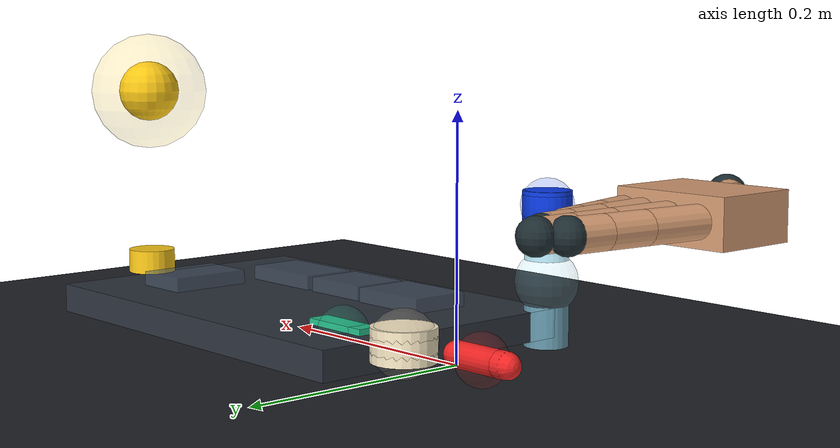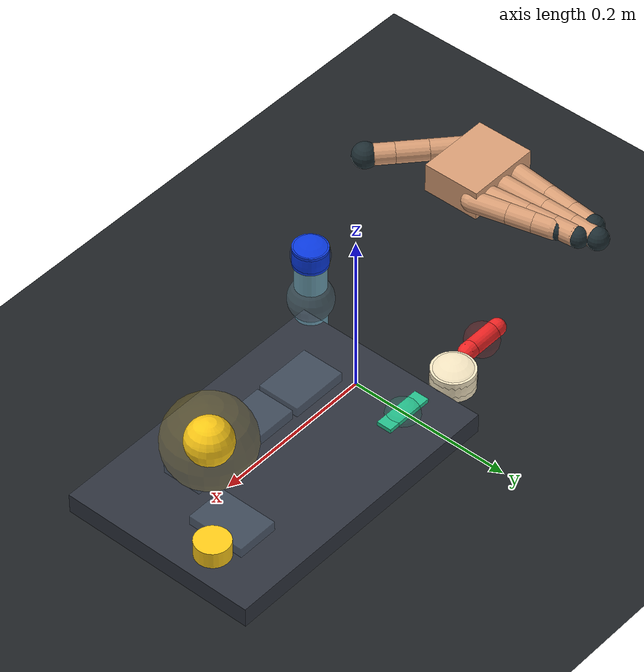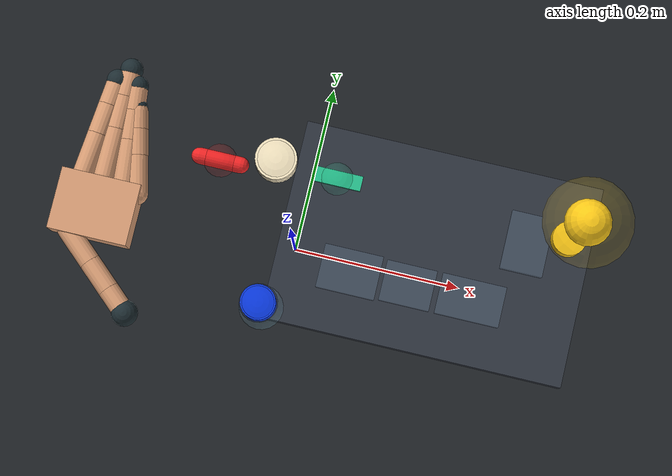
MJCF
<mujoco model="tactile_medkit_manipulation_benchmark">
  <compiler angle="degree" autolimits="true"/>
  <option timestep="0.01" gravity="0 0 -9.81" integrator="RK4"/>

  <visual>
    <global offwidth="1280" offheight="720"/>
    <quality shadowsize="2048"/>
    <headlight diffuse="0.8 0.8 0.8" ambient="0.25 0.25 0.25" specular="0.2 0.2 0.2"/>
  </visual>

  <asset>
    <texture name="grid" type="2d" builtin="checker" width="512" height="512" rgb1="0.08 0.09 0.1" rgb2="0.16 0.18 0.2"/>
    <material name="floor_mat" texture="grid" texrepeat="4 4" reflectance="0.08"/>
    <material name="hand_mat" rgba="0.85 0.62 0.46 1"/>
    <material name="pad_mat" rgba="0.12 0.18 0.2 1"/>
    <material name="vial_mat" rgba="0.6 0.9 1.0 0.65"/>
    <material name="cap_mat" rgba="0.05 0.24 0.9 1"/>
    <material name="capsule_mat" rgba="0.95 0.15 0.15 1"/>
    <material name="bandage_mat" rgba="0.98 0.92 0.78 1"/>
    <material name="tool_mat" rgba="0.15 0.75 0.55 1"/>
    <material name="tray_mat" rgba="0.18 0.2 0.24 1"/>
    <material name="slot_mat" rgba="0.35 0.42 0.5 0.5"/>
    <material name="button_mat" rgba="1.0 0.8 0.1 1"/>
  </asset>

  <default>
    <joint damping="0.7" stiffness="0.05"/>
    <geom condim="4" contype="0" conaffinity="0" friction="1.1 0.08 0.01" solref="0.01 1" solimp="0.9 0.95 0.001"/>
    <default class="finger">
      <joint limited="true" range="-18 74" armature="0.01"/>
      <geom type="capsule" size="0.012" material="hand_mat"/>
    </default>
  </default>

  <worldbody>
    <light name="key" pos="0.2 -0.8 1.2" dir="-0.2 0.6 -1"/>
    <camera name="demo" pos="0.62 -0.82 0.48" xyaxes="0.82 0.57 0 -0.26 0.37 0.89"/>
    <geom name="floor" type="plane" size="1.1 1.1 0.02" material="floor_mat"/>

    <body name="kit_tray" pos="0.16 0.03 0.025">
      <geom name="tray_base" type="box" size="0.18 0.12 0.012" material="tray_mat"/>
      <geom name="slot_a" type="box" pos="-0.09 -0.045 0.018" size="0.035 0.026 0.006" material="slot_mat"/>
      <geom name="slot_b" type="box" pos="-0.02 -0.045 0.018" size="0.030 0.024 0.006" material="slot_mat"/>
      <geom name="slot_c" type="box" pos="0.055 -0.045 0.018" size="0.038 0.024 0.006" material="slot_mat"/>
      <geom name="slot_d" type="box" pos="0.105 0.035 0.018" size="0.025 0.035 0.006" material="slot_mat"/>
    </body>

    <body name="hand_root" pos="-0.22 -0.02 0.14">
      <freejoint name="hand_free"/>
      <geom name="palm" type="box" size="0.045 0.035 0.018" material="hand_mat"/>
      <body name="thumb_base" pos="-0.025 -0.03 0.0" euler="0 0 -42">
        <joint name="thumb_mcp" class="finger" axis="0 0 1"/>
        <geom name="thumb_proximal" class="finger" fromto="0 0 0 0.045 0 0"/>
        <body name="thumb_mid" pos="0.045 0 0">
          <joint name="thumb_pip" class="finger" axis="0 0 1"/>
          <geom name="thumb_middle" class="finger" fromto="0 0 0 0.037 0 0"/>
          <body name="thumb_tip" pos="0.037 0 0">
            <joint name="thumb_dip" class="finger" axis="0 0 1"/>
            <geom name="thumb_distal" class="finger" fromto="0 0 0 0.027 0 0"/>
            <geom name="thumb_pad" type="sphere" pos="0.032 0 0" size="0.015" material="pad_mat" contype="1" conaffinity="2"/>
            <site name="thumb_tip_site" pos="0.034 0 0" size="0.006"/>
          </body>
        </body>
      </body>
      <body name="index_base" pos="-0.024 0.032 0.0" euler="0 0 84">
        <joint name="index_mcp" class="finger" axis="0 0 1"/>
        <geom name="index_proximal" class="finger" fromto="0 0 0 0.050 0 0"/>
        <body pos="0.050 0 0">
          <joint name="index_pip" class="finger" axis="0 0 1"/>
          <geom name="index_middle" class="finger" fromto="0 0 0 0.035 0 0"/>
          <body pos="0.035 0 0">
            <joint name="index_dip" class="finger" axis="0 0 1"/>
            <geom name="index_distal" class="finger" fromto="0 0 0 0.025 0 0"/>
            <geom name="index_pad" type="sphere" pos="0.030 0 0" size="0.013" material="pad_mat" contype="1" conaffinity="2"/>
            <site name="index_tip_site" pos="0.032 0 0" size="0.006"/>
          </body>
        </body>
      </body>
      <body name="middle_base" pos="0.0 0.037 0.0" euler="0 0 90">
        <joint name="middle_mcp" class="finger" axis="0 0 1"/>
        <geom name="middle_proximal" class="finger" fromto="0 0 0 0.055 0 0"/>
        <body pos="0.055 0 0">
          <joint name="middle_pip" class="finger" axis="0 0 1"/>
          <geom name="middle_middle" class="finger" fromto="0 0 0 0.038 0 0"/>
          <body pos="0.038 0 0">
            <joint name="middle_dip" class="finger" axis="0 0 1"/>
            <geom name="middle_distal" class="finger" fromto="0 0 0 0.027 0 0"/>
            <geom name="middle_pad" type="sphere" pos="0.032 0 0" size="0.013" material="pad_mat" contype="1" conaffinity="2"/>
            <site name="middle_tip_site" pos="0.034 0 0" size="0.006"/>
          </body>
        </body>
      </body>
      <body name="ring_base" pos="0.023 0.034 0.0" euler="0 0 96">
        <joint name="ring_mcp" class="finger" axis="0 0 1"/>
        <geom name="ring_proximal" class="finger" fromto="0 0 0 0.049 0 0"/>
        <body pos="0.049 0 0">
          <joint name="ring_pip" class="finger" axis="0 0 1"/>
          <geom name="ring_middle" class="finger" fromto="0 0 0 0.034 0 0"/>
          <body pos="0.034 0 0">
            <joint name="ring_dip" class="finger" axis="0 0 1"/>
            <geom name="ring_distal" class="finger" fromto="0 0 0 0.024 0 0"/>
            <geom name="ring_pad" type="sphere" pos="0.029 0 0" size="0.012" material="pad_mat" contype="1" conaffinity="2"/>
            <site name="ring_tip_site" pos="0.031 0 0" size="0.006"/>
          </body>
        </body>
      </body>
      <body name="little_base" pos="0.041 0.026 0.0" euler="0 0 104">
        <joint name="little_mcp" class="finger" axis="0 0 1"/>
        <geom name="little_proximal" class="finger" fromto="0 0 0 0.043 0 0"/>
        <body pos="0.043 0 0">
          <joint name="little_pip" class="finger" axis="0 0 1"/>
          <geom name="little_middle" class="finger" fromto="0 0 0 0.030 0 0"/>
          <body pos="0.030 0 0">
            <joint name="little_dip" class="finger" axis="0 0 1"/>
            <geom name="little_distal" class="finger" fromto="0 0 0 0.021 0 0"/>
            <geom name="little_pad" type="sphere" pos="0.026 0 0" size="0.011" material="pad_mat" contype="1" conaffinity="2"/>
            <site name="little_tip_site" pos="0.028 0 0" size="0.006"/>
          </body>
        </body>
      </body>
    </body>

    <body name="vial" pos="-0.02 -0.08 0.06">
      <freejoint name="vial_free"/>
      <geom name="vial_glass" type="cylinder" size="0.018 0.052" material="vial_mat" contype="2" conaffinity="1"/>
      <geom name="vial_contact_shell" type="sphere" size="0.026" material="vial_mat" contype="2" conaffinity="1" rgba="0.6 0.9 1.0 0.12"/>
    </body>
    <body name="cap" pos="-0.02 -0.08 0.122">
      <freejoint name="cap_free"/>
      <geom name="cap_blue" type="cylinder" size="0.020 0.012" material="cap_mat" contype="2" conaffinity="1"/>
      <geom name="cap_contact_shell" type="sphere" size="0.022" material="cap_mat" contype="2" conaffinity="1" rgba="0.05 0.24 0.9 0.12"/>
    </body>
    <body name="capsule" pos="-0.11 0.08 0.035">
      <freejoint name="capsule_free"/>
      <geom name="capsule_geom" type="capsule" fromto="-0.025 0 0 0.025 0 0" size="0.010" material="capsule_mat" contype="2" conaffinity="1"/>
      <geom name="capsule_contact_shell" type="sphere" size="0.020" material="capsule_mat" contype="2" conaffinity="1" rgba="0.95 0.15 0.15 0.12"/>
    </body>
    <body name="bandage" pos="-0.045 0.095 0.038">
      <freejoint name="bandage_free"/>
      <geom name="bandage_roll" type="cylinder" size="0.025 0.013" material="bandage_mat" contype="2" conaffinity="1"/>
      <geom name="bandage_contact_shell" type="sphere" size="0.026" material="bandage_mat" contype="2" conaffinity="1" rgba="0.98 0.92 0.78 0.12"/>
    </body>
    <body name="tool_token" pos="0.03 0.09 0.035">
      <freejoint name="tool_free"/>
      <geom name="tool_body" type="box" size="0.030 0.009 0.007" material="tool_mat" contype="2" conaffinity="1"/>
      <geom name="tool_contact_shell" type="sphere" size="0.020" material="tool_mat" contype="2" conaffinity="1" rgba="0.15 0.75 0.55 0.12"/>
    </body>
    <body name="button" pos="0.31 0.08 0.055">
      <joint name="button_slide" type="slide" axis="0 0 1" range="-0.01 0.008" limited="true" damping="0.2"/>
      <geom name="button_stem" type="cylinder" size="0.020 0.010" material="button_mat" contype="2" conaffinity="1"/>
      <geom name="button_head" pos="0 0 0.150" type="sphere" size="0.026" material="button_mat" contype="2" conaffinity="1"/>
      <geom name="button_contact_shell" pos="0 0 0.150" type="sphere" size="0.050" material="button_mat" contype="2" conaffinity="1" rgba="1.0 0.8 0.1 0.12"/>
    </body>
  </worldbody>

  <actuator>
    <position name="thumb_mcp_act" joint="thumb_mcp" kp="8"/>
    <position name="thumb_pip_act" joint="thumb_pip" kp="8"/>
    <position name="thumb_dip_act" joint="thumb_dip" kp="8"/>
    <position name="index_mcp_act" joint="index_mcp" kp="8"/>
    <position name="index_pip_act" joint="index_pip" kp="8"/>
    <position name="index_dip_act" joint="index_dip" kp="8"/>
    <position name="middle_mcp_act" joint="middle_mcp" kp="8"/>
    <position name="middle_pip_act" joint="middle_pip" kp="8"/>
    <position name="middle_dip_act" joint="middle_dip" kp="8"/>
    <position name="ring_mcp_act" joint="ring_mcp" kp="8"/>
    <position name="ring_pip_act" joint="ring_pip" kp="8"/>
    <position name="ring_dip_act" joint="ring_dip" kp="8"/>
    <position name="little_mcp_act" joint="little_mcp" kp="8"/>
    <position name="little_pip_act" joint="little_pip" kp="8"/>
    <position name="little_dip_act" joint="little_dip" kp="8"/>
    <position name="button_act" joint="button_slide" kp="15"/>
  </actuator>

  <sensor>
    <jointpos name="thumb_mcp_angle" joint="thumb_mcp"/>
    <jointpos name="index_mcp_angle" joint="index_mcp"/>
    <jointpos name="middle_mcp_angle" joint="middle_mcp"/>
    <jointpos name="ring_mcp_angle" joint="ring_mcp"/>
    <jointpos name="little_mcp_angle" joint="little_mcp"/>
    <jointpos name="button_depth" joint="button_slide"/>
  </sensor>
</mujoco>
